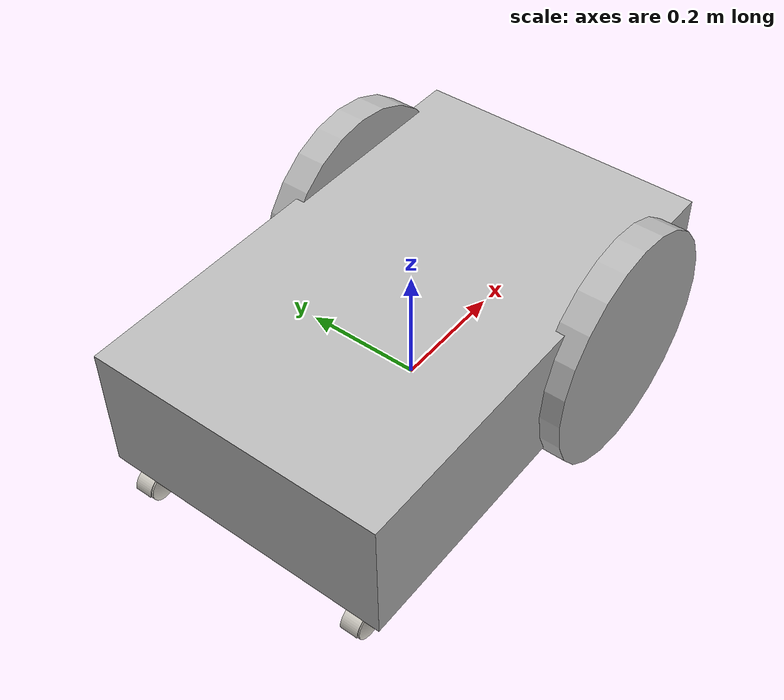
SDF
<?xml version="1.0" encoding="utf-8"?>
<sdf version='1.6'>
  <model name='spbot'>
    <link name='chassis'>
      <pose frame=''>0 0 0 0 -0 0</pose>
      <inertial>
        <pose frame=''>0.15 0 0.116667 0 -0 0</pose>
        <mass>9.6</mass>
        <inertia>
          <ixx>0.557333</ixx>
          <ixy>0</ixy>
          <ixz>0.6</ixz>
          <iyy>1.57333</iyy>
          <iyz>-6.93889e-18</iyz>
          <izz>1.304</izz>
        </inertia>
      </inertial>
      <collision name='chassis_fixed_joint_lump__collision_collision'>
        <pose frame=''>0 0 0 0 -0 0</pose>
        <geometry>
          <box>
            <size>0.8 0.5 0.22</size>
          </box>
        </geometry>
      </collision>
      <collision name='chassis_fixed_joint_lump__collision_collision_1'>
        <pose frame=''>0.9 0.2 -0.3 0 -0 0</pose>
        <geometry>
          <mesh>
            <scale>1 1 1</scale>
            <uri>file:///home/rit/catkin_ws2/src/spbot/spbot_description/meshes/free_wheel.dae</uri>
          </mesh>
        </geometry>
      </collision>
      <collision name='chassis_fixed_joint_lump__collision_collision_2'>
        <pose frame=''>0.9 -0.2 -0.3 0 -0 0</pose>
        <geometry>
          <mesh>
            <scale>1 1 1</scale>
            <uri>file:///home/rit/catkin_ws2/src/spbot/spbot_description/meshes/free_wheel.dae</uri>
          </mesh>
        </geometry>
      </collision>
      <visual name='chassis_visual_visual'>
        <pose frame=''>0 0 0.1 0 -0 0</pose>
        <geometry>
          <box>
            <size>0.8 0.5 0.22</size>
          </box>
        </geometry>
      </visual>
      <visual name='chassis_fixed_joint_lump__visual_visual_1'>
        <pose frame=''>0.9 0.2 -0.3 0 -0 0</pose>
        <geometry>
          <mesh>
            <scale>1 1 1</scale>
            <uri>file:///home/rit/catkin_ws2/src/spbot/spbot_description/meshes/free_wheel.dae</uri>
          </mesh>
        </geometry>
      </visual>
      <visual name='chassis_fixed_joint_lump__visual_visual_2'>
        <pose frame=''>0.9 -0.2 -0.3 0 -0 0</pose>
        <geometry>
          <mesh>
            <scale>1 1 1</scale>
            <uri>file:///home/rit/catkin_ws2/src/spbot/spbot_description/meshes/free_wheel.dae</uri>
          </mesh>
        </geometry>
      </visual>
    </link>
    <link name='left_wheel'>
      <pose frame=''>0.18 0.26 0.08 0 -0 0</pose>
      <inertial>
        <pose frame=''>0 0 0 0 1.5707 1.5707</pose>
        <mass>1</mass>
        <inertia>
          <ixx>0.1</ixx>
          <ixy>0</ixy>
          <ixz>0</ixz>
          <iyy>0.1</iyy>
          <iyz>0</iyz>
          <izz>0.1</izz>
        </inertia>
      </inertial>
      <collision name='left_wheel_fixed_joint_lump__collision_collision'>
        <pose frame=''>0 0 0 3.14159 1.57079 -1.57089</pose>
        <geometry>
          <cylinder>
            <length>0.05</length>
            <radius>0.2</radius>
          </cylinder>
        </geometry>
      </collision>
      <visual name='left_wheel_visual_visual'>
        <pose frame=''>0 0 0 3.14159 1.57079 -1.57089</pose>
        <geometry>
          <cylinder>
            <length>0.05</length>
            <radius>0.2</radius>
          </cylinder>
        </geometry>
      </visual>
    </link>
    <joint name='wheel_left_joint' type='revolute'>
      <child>left_wheel</child>
      <parent>chassis</parent>
      <axis>
        <xyz>0 1 0</xyz>
        <limit>
          <lower>-1e+16</lower>
          <upper>1e+16</upper>
        </limit>
        <dynamics>
          <spring_reference>0</spring_reference>
          <spring_stiffness>0</spring_stiffness>
        </dynamics>
        <use_parent_model_frame>1</use_parent_model_frame>
      </axis>
    </joint>
    <link name='right_wheel'>
      <pose frame=''>0.18 -0.26 0.08 0 -0 0</pose>
      <inertial>
        <pose frame=''>0 0 0 0 1.5707 1.5707</pose>
        <mass>1</mass>
        <inertia>
          <ixx>0.1</ixx>
          <ixy>0</ixy>
          <ixz>0</ixz>
          <iyy>0.1</iyy>
          <iyz>0</iyz>
          <izz>0.1</izz>
        </inertia>
      </inertial>
      <collision name='right_wheel_fixed_joint_lump__collision_collision'>
        <pose frame=''>0 0 0 3.14159 1.57079 -1.57089</pose>
        <geometry>
          <cylinder>
            <length>0.05</length>
            <radius>0.2</radius>
          </cylinder>
        </geometry>
      </collision>
      <visual name='right_wheel_visual_visual'>
        <pose frame=''>0 0 0 3.14159 1.57079 -1.57089</pose>
        <geometry>
          <cylinder>
            <length>0.05</length>
            <radius>0.2</radius>
          </cylinder>
        </geometry>
      </visual>
    </link>
    <joint name='wheel_right_joint' type='revolute'>
      <child>right_wheel</child>
      <parent>chassis</parent>
      <axis>
        <xyz>0 1 0</xyz>
        <limit>
          <lower>-1e+16</lower>
          <upper>1e+16</upper>
        </limit>
        <dynamics>
          <spring_reference>0</spring_reference>
          <spring_stiffness>0</spring_stiffness>
        </dynamics>
        <use_parent_model_frame>1</use_parent_model_frame>
      </axis>
    </joint>
    <static>0</static>
    <plugin name='gazebo_ros_control' filename='libgazebo_ros_control.so'>
      <robotNamespace>/spbot</robotNamespace>
    </plugin>
    <plugin name='differential_drive_controller' filename='libgazebo_ros_diff_drive.so'>
      <robotSimType>gazebo_ros_control/DefaultRobotHWSim</robotSimType>
      <alwaysOn>1</alwaysOn>
      <updateRate>20</updateRate>
      <leftJoint>wheel_left_joint</leftJoint>
      <rightJoint>wheel_right_joint</rightJoint>
      <wheelSeparation>0.5380</wheelSeparation>
      <wheelDiameter>0.2410</wheelDiameter>
      <torque>20</torque>
      <commandTopic>cmd_vel</commandTopic>
      <odometryTopic>odom</odometryTopic>
      <odometryFrame>odom</odometryFrame>
      <odometrySource>world</odometrySource>
      <publishTf>1</publishTf>
      <robotBaseFrame>chassis</robotBaseFrame>
      <publishWheelTF>1</publishWheelTF>
      <publishOdomTF>1</publishOdomTF>
      <publishWheelJointState>1</publishWheelJointState>
      <wheelAcceleration>0</wheelAcceleration>
      <wheelTorque>5</wheelTorque>
      <rosDebugLevel>na</rosDebugLevel>
    </plugin>

     <sensor name='chassis_contact' type='contact'>
       <alwaysOn>true</alwaysOn>
       <updateRate>15.0</updateRate>

       <contact>
         <collision>chassis_fixed_joint_lump__collision_collision</collision>
       </contact>
       <topic>__default_topic__</topic>

      <plugin name="gazebo_ros_bumper_controller" filename="libgazebo_ros_bumper.so">
        <bumperTopicName>chassis_contact_info</bumperTopicName>
         <frameName>chassis</frameName>
       </plugin>
     </sensor>

  </model>
</sdf>
